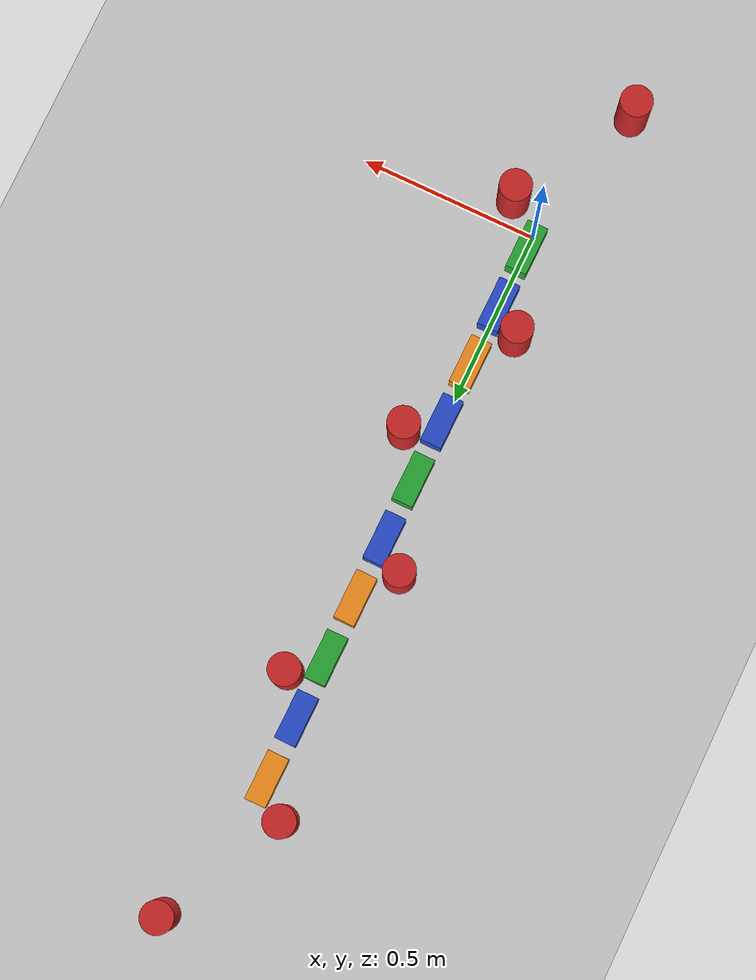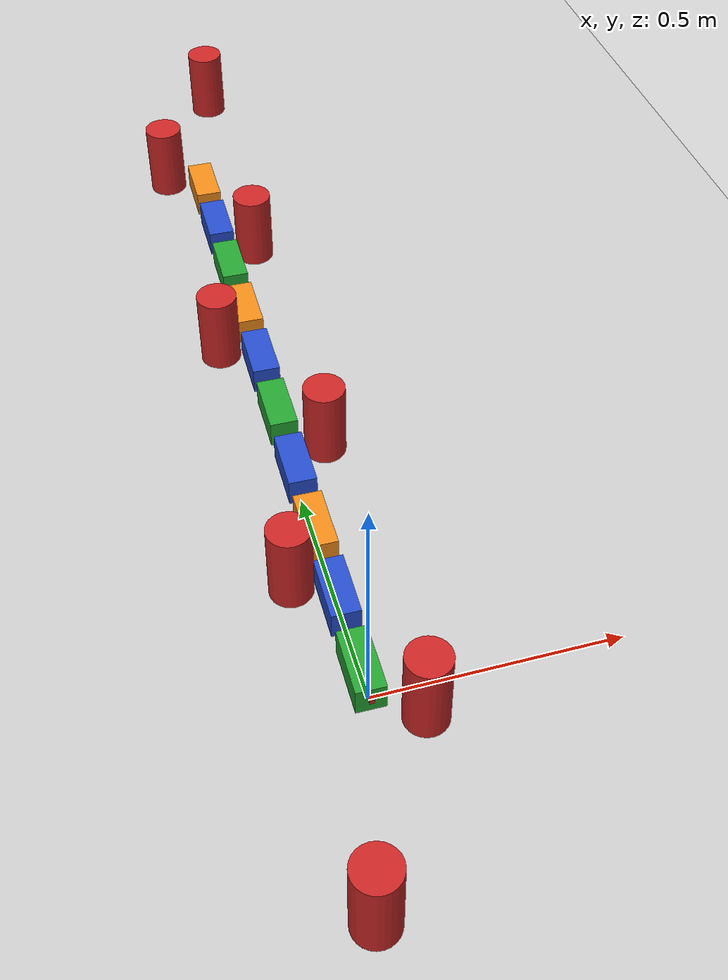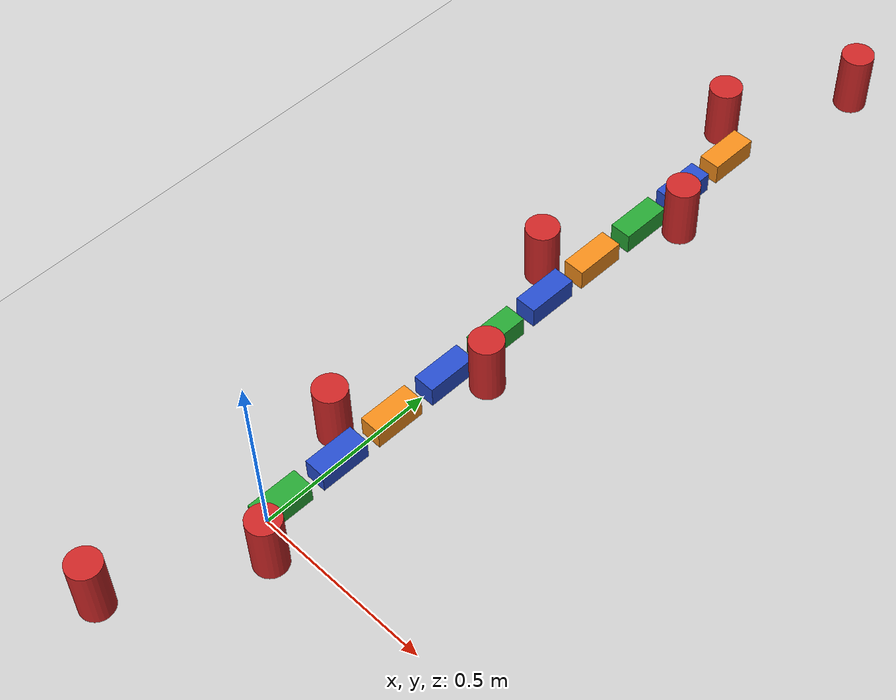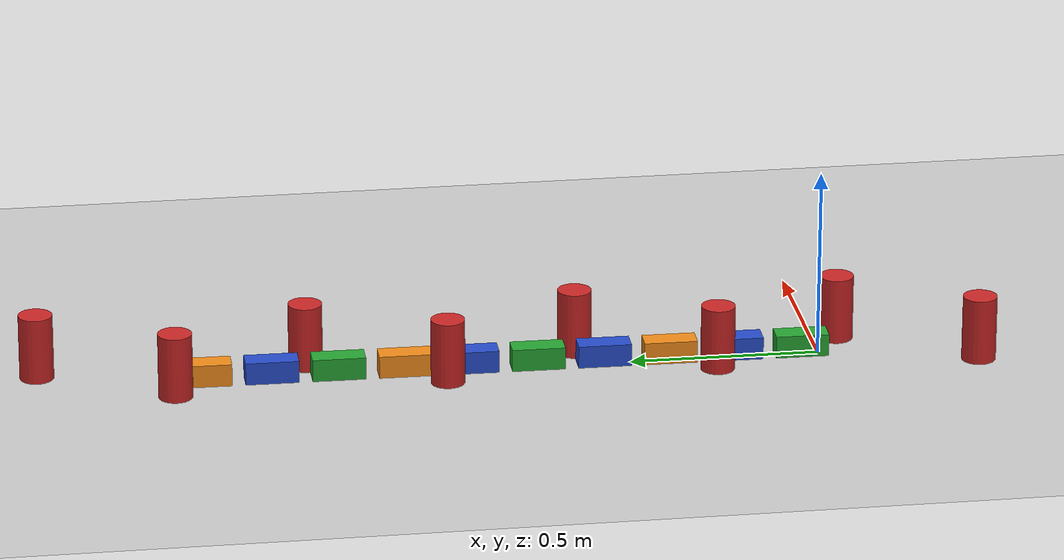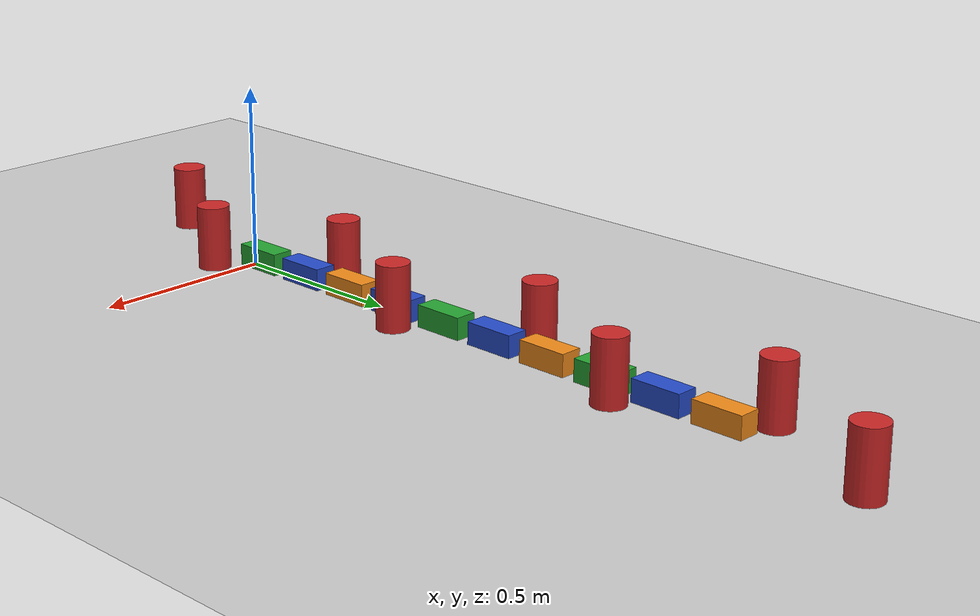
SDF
<sdf version="1.7">
 <world name="default">
  <light name="sun" type="directional">
   <pose>0 0 10 0 -0 0</pose>
   <diffuse>0.8 0.8 0.8 1</diffuse>
   <specular>0.2 0.2 0.2 1</specular>
   <attenuation>
    <range>1000</range>
    <constant>0.9</constant>
    <linear>0.01</linear>
    <quadratic>0.001</quadratic>
   </attenuation>
   <direction>-0.5 0.1 -0.9</direction>
   <spot><inner_angle>0</inner_angle><outer_angle>0</outer_angle><falloff>0</falloff></spot>
  </light>
  <model name="ground_plane">
   <static>1</static>
   <link name="link">
    <collision name="collision">
     <geometry><plane><normal>0 0 1</normal><size>100 100</size></plane></geometry>
     <surface>
      <contact><collide_bitmask>65535</collide_bitmask></contact>
      <friction><ode><mu>100</mu><mu2>50</mu2></ode></friction>
     </surface>
    </collision>
    <visual name="visual">
     <cast_shadows>0</cast_shadows>
     <geometry><plane><normal>0 0 1</normal><size>100 100</size></plane></geometry>
     <material>
      <script><uri>file://media/materials/scripts/gazebo.material</uri><name>Gazebo/Grey</name></script>
     </material>
    </visual>
   </link>
  </model>
  <gravity>0 0 -9.8</gravity>
  <magnetic_field>6e-06 2.3e-05 -4.2e-05</magnetic_field>
  <atmosphere type="adiabatic"/>
  <physics type="ode">
   <max_step_size>0.001</max_step_size>
   <real_time_factor>1</real_time_factor>
   <real_time_update_rate>1000</real_time_update_rate>
  </physics>
  <scene><ambient>0.4 0.4 0.4 1</ambient><background>0.7 0.7 0.7 1</background><shadows>1</shadows></scene>
  <audio><device>default</device></audio>
  <spherical_coordinates>
   <surface_model>EARTH_WGS84</surface_model>
   <latitude_deg>0</latitude_deg>
   <longitude_deg>0</longitude_deg>
   <elevation>0</elevation>
   <heading_deg>0</heading_deg>
  </spherical_coordinates>
  <model name="my_bot">
   <link name="base_link">
    <inertial>
     <pose>0 0.07 0.03 0 -0 0</pose>
     <mass>1</mass>
     <inertia>
      <ixx>0.00193333</ixx>
      <ixy>0</ixy>
      <ixz>0</ixz>
      <iyy>0.0006</iyy>
      <iyz>0</iyz>
      <izz>0.00193333</izz>
     </inertia>
    </inertial>
    <collision name="base_link_fixed_joint_lump__link_1_collision">
     <pose>0 0.07 0.03 0 -0 0</pose>
     <geometry><box><size>0.06 0.14 0.06</size></box></geometry>
    </collision>
    <visual name="base_link_fixed_joint_lump__link_1_visual">
     <pose>0 0.07 0.03 0 -0 0</pose>
     <geometry><box><size>0.06 0.14 0.06</size></box></geometry>
     <material>
      <script><name>Gazebo/Green</name><uri>file://media/materials/scripts/gazebo.material</uri></script>
     </material>
    </visual>
    <visual name="base_link_fixed_joint_lump__camera_link_visual_1">
     <pose>0 0 0.03 0 0 -1.5708</pose>
     <geometry><box><size>0.01 0.01 0.01</size></box></geometry>
     <material>
      <script><name>Gazebo/Red</name><uri>file://media/materials/scripts/gazebo.material</uri></script>
     </material>
    </visual>
    <sensor name="camera" type="camera">
     <visualize>1</visualize>
     <update_rate>10</update_rate>
     <camera>
      <horizontal_fov>1.089</horizontal_fov>
      <image><format>R8G8B8</format><width>640</width><height>480</height></image>
      <clip><near>0.05</near><far>8</far></clip>
     </camera>
     <plugin name="camera_controller" filename="libgazebo_ros_camera.so">
      <frame_name>camera_link_optical</frame_name>
     </plugin>
     <pose>0 0 0.03 0 0 -1.5708</pose>
    </sensor>
   </link>
   <joint name="link_1_2_joint" type="revolute">
    <pose relative_to="base_link">0 0.175 0 0 -0 0</pose>
    <parent>base_link</parent>
    <child>link_2</child>
    <axis>
     <xyz>0 0 1</xyz>
     <limit><lower>-0.785398</lower><upper>0.785398</upper><effort>1000</effort><velocity>50</velocity></limit>
     <dynamics><spring_reference>0</spring_reference><spring_stiffness>0</spring_stiffness></dynamics>
    </axis>
   </joint>
   <link name="link_2">
    <pose relative_to="link_1_2_joint">0 0 0 0 -0 0</pose>
    <inertial>
     <pose>0 0.07 0.03 0 -0 0</pose>
     <mass>1</mass>
     <inertia>
      <ixx>0.00193333</ixx>
      <ixy>0</ixy>
      <ixz>0</ixz>
      <iyy>0.0006</iyy>
      <iyz>0</iyz>
      <izz>0.00193333</izz>
     </inertia>
    </inertial>
    <collision name="link_2_collision">
     <pose>0 0.07 0.03 0 -0 0</pose>
     <geometry><box><size>0.06 0.14 0.06</size></box></geometry>
    </collision>
    <visual name="link_2_visual">
     <pose>0 0.07 0.03 0 -0 0</pose>
     <geometry><box><size>0.06 0.14 0.06</size></box></geometry>
     <material>
      <script><name>Gazebo/Blue</name><uri>file://media/materials/scripts/gazebo.material</uri></script>
     </material>
    </visual>
   </link>
   <joint name="link_2_3_joint" type="revolute">
    <pose relative_to="link_2">0 0.175 0 0 -0 0</pose>
    <parent>link_2</parent>
    <child>link_3</child>
    <axis>
     <xyz>0 0 1</xyz>
     <limit><lower>-0.785398</lower><upper>0.785398</upper><effort>1000</effort><velocity>50</velocity></limit>
     <dynamics><spring_reference>0</spring_reference><spring_stiffness>0</spring_stiffness></dynamics>
    </axis>
   </joint>
   <link name="link_3">
    <pose relative_to="link_2_3_joint">0 0 0 0 -0 0</pose>
    <inertial>
     <pose>0 0.07 0.03 0 -0 0</pose>
     <mass>1</mass>
     <inertia>
      <ixx>0.00193333</ixx>
      <ixy>0</ixy>
      <ixz>0</ixz>
      <iyy>0.0006</iyy>
      <iyz>0</iyz>
      <izz>0.00193333</izz>
     </inertia>
    </inertial>
    <collision name="link_3_collision">
     <pose>0 0.07 0.03 0 -0 0</pose>
     <geometry><box><size>0.06 0.14 0.06</size></box></geometry>
    </collision>
    <visual name="link_3_visual">
     <pose>0 0.07 0.03 0 -0 0</pose>
     <geometry><box><size>0.06 0.14 0.06</size></box></geometry>
     <material>
      <script><name>Gazebo/Orange</name><uri>file://media/materials/scripts/gazebo.material</uri></script>
     </material>
    </visual>
   </link>
   <joint name="link_3_4_joint" type="revolute">
    <pose relative_to="link_3">0 0.175 0 0 -0 0</pose>
    <parent>link_3</parent>
    <child>link_4</child>
    <axis>
     <xyz>0 0 1</xyz>
     <limit><lower>-0.785398</lower><upper>0.785398</upper><effort>1000</effort><velocity>50</velocity></limit>
     <dynamics><spring_reference>0</spring_reference><spring_stiffness>0</spring_stiffness></dynamics>
    </axis>
   </joint>
   <link name="link_4">
    <pose relative_to="link_3_4_joint">0 0 0 0 -0 0</pose>
    <inertial>
     <pose>0 0.07 0.03 0 -0 0</pose>
     <mass>1</mass>
     <inertia>
      <ixx>0.00193333</ixx>
      <ixy>0</ixy>
      <ixz>0</ixz>
      <iyy>0.0006</iyy>
      <iyz>0</iyz>
      <izz>0.00193333</izz>
     </inertia>
    </inertial>
    <collision name="link_4_collision">
     <pose>0 0.07 0.03 0 -0 0</pose>
     <geometry><box><size>0.06 0.14 0.06</size></box></geometry>
    </collision>
    <visual name="link_4_visual">
     <pose>0 0.07 0.03 0 -0 0</pose>
     <geometry><box><size>0.06 0.14 0.06</size></box></geometry>
     <material>
      <script><name>Gazebo/Blue</name><uri>file://media/materials/scripts/gazebo.material</uri></script>
     </material>
    </visual>
   </link>
   <joint name="link_4_5_joint" type="revolute">
    <pose relative_to="link_4">0 0.175 0 0 -0 0</pose>
    <parent>link_4</parent>
    <child>link_5</child>
    <axis>
     <xyz>0 0 1</xyz>
     <limit><lower>-0.785398</lower><upper>0.785398</upper><effort>1000</effort><velocity>50</velocity></limit>
     <dynamics><spring_reference>0</spring_reference><spring_stiffness>0</spring_stiffness></dynamics>
    </axis>
   </joint>
   <link name="link_5">
    <pose relative_to="link_4_5_joint">0 0 0 0 -0 0</pose>
    <inertial>
     <pose>0 0.07 0.03 0 -0 0</pose>
     <mass>1</mass>
     <inertia>
      <ixx>0.00193333</ixx>
      <ixy>0</ixy>
      <ixz>0</ixz>
      <iyy>0.0006</iyy>
      <iyz>0</iyz>
      <izz>0.00193333</izz>
     </inertia>
    </inertial>
    <collision name="link_5_collision">
     <pose>0 0.07 0.03 0 -0 0</pose>
     <geometry><box><size>0.06 0.14 0.06</size></box></geometry>
    </collision>
    <visual name="link_5_visual">
     <pose>0 0.07 0.03 0 -0 0</pose>
     <geometry><box><size>0.06 0.14 0.06</size></box></geometry>
     <material>
      <script><name>Gazebo/Green</name><uri>file://media/materials/scripts/gazebo.material</uri></script>
     </material>
    </visual>
   </link>
   <joint name="link_5_6_joint" type="revolute">
    <pose relative_to="link_5">0 0.175 0 0 -0 0</pose>
    <parent>link_5</parent>
    <child>link_6</child>
    <axis>
     <xyz>0 0 1</xyz>
     <limit><lower>-0.785398</lower><upper>0.785398</upper><effort>1000</effort><velocity>50</velocity></limit>
     <dynamics><spring_reference>0</spring_reference><spring_stiffness>0</spring_stiffness></dynamics>
    </axis>
   </joint>
   <link name="link_6">
    <pose relative_to="link_5_6_joint">0 0 0 0 -0 0</pose>
    <inertial>
     <pose>0 0.07 0.03 0 -0 0</pose>
     <mass>1</mass>
     <inertia>
      <ixx>0.00193333</ixx>
      <ixy>0</ixy>
      <ixz>0</ixz>
      <iyy>0.0006</iyy>
      <iyz>0</iyz>
      <izz>0.00193333</izz>
     </inertia>
    </inertial>
    <collision name="link_6_collision">
     <pose>0 0.07 0.03 0 -0 0</pose>
     <geometry><box><size>0.06 0.14 0.06</size></box></geometry>
    </collision>
    <visual name="link_6_visual">
     <pose>0 0.07 0.03 0 -0 0</pose>
     <geometry><box><size>0.06 0.14 0.06</size></box></geometry>
     <material>
      <script><name>Gazebo/Blue</name><uri>file://media/materials/scripts/gazebo.material</uri></script>
     </material>
    </visual>
   </link>
   <joint name="link_6_7_joint" type="revolute">
    <pose relative_to="link_6">0 0.175 0 0 -0 0</pose>
    <parent>link_6</parent>
    <child>link_7</child>
    <axis>
     <xyz>0 0 1</xyz>
     <limit><lower>-0.785398</lower><upper>0.785398</upper><effort>1000</effort><velocity>50</velocity></limit>
     <dynamics><spring_reference>0</spring_reference><spring_stiffness>0</spring_stiffness></dynamics>
    </axis>
   </joint>
   <link name="link_7">
    <pose relative_to="link_6_7_joint">0 0 0 0 -0 0</pose>
    <inertial>
     <pose>0 0.07 0.03 0 -0 0</pose>
     <mass>1</mass>
     <inertia>
      <ixx>0.00193333</ixx>
      <ixy>0</ixy>
      <ixz>0</ixz>
      <iyy>0.0006</iyy>
      <iyz>0</iyz>
      <izz>0.00193333</izz>
     </inertia>
    </inertial>
    <collision name="link_7_collision">
     <pose>0 0.07 0.03 0 -0 0</pose>
     <geometry><box><size>0.06 0.14 0.06</size></box></geometry>
    </collision>
    <visual name="link_7_visual">
     <pose>0 0.07 0.03 0 -0 0</pose>
     <geometry><box><size>0.06 0.14 0.06</size></box></geometry>
     <material>
      <script><name>Gazebo/Orange</name><uri>file://media/materials/scripts/gazebo.material</uri></script>
     </material>
    </visual>
   </link>
   <joint name="link_7_8_joint" type="revolute">
    <pose relative_to="link_7">0 0.175 0 0 -0 0</pose>
    <parent>link_7</parent>
    <child>link_8</child>
    <axis>
     <xyz>0 0 1</xyz>
     <limit><lower>-0.785398</lower><upper>0.785398</upper><effort>1000</effort><velocity>50</velocity></limit>
     <dynamics><spring_reference>0</spring_reference><spring_stiffness>0</spring_stiffness></dynamics>
    </axis>
   </joint>
   <link name="link_8">
    <pose relative_to="link_7_8_joint">0 0 0 0 -0 0</pose>
    <inertial>
     <pose>0 0.07 0.03 0 -0 0</pose>
     <mass>1</mass>
     <inertia>
      <ixx>0.00193333</ixx>
      <ixy>0</ixy>
      <ixz>0</ixz>
      <iyy>0.0006</iyy>
      <iyz>0</iyz>
      <izz>0.00193333</izz>
     </inertia>
    </inertial>
    <collision name="link_8_collision">
     <pose>0 0.07 0.03 0 -0 0</pose>
     <geometry><box><size>0.06 0.14 0.06</size></box></geometry>
    </collision>
    <visual name="link_8_visual">
     <pose>0 0.07 0.03 0 -0 0</pose>
     <geometry><box><size>0.06 0.14 0.06</size></box></geometry>
     <material>
      <script><name>Gazebo/Green</name><uri>file://media/materials/scripts/gazebo.material</uri></script>
     </material>
    </visual>
   </link>
   <joint name="link_8_9_joint" type="revolute">
    <pose relative_to="link_8">0 0.175 0 0 -0 0</pose>
    <parent>link_8</parent>
    <child>link_9</child>
    <axis>
     <xyz>0 0 1</xyz>
     <limit><lower>-0.785398</lower><upper>0.785398</upper><effort>1000</effort><velocity>50</velocity></limit>
     <dynamics><spring_reference>0</spring_reference><spring_stiffness>0</spring_stiffness></dynamics>
    </axis>
   </joint>
   <link name="link_9">
    <pose relative_to="link_8_9_joint">0 0 0 0 -0 0</pose>
    <inertial>
     <pose>0 0.07 0.03 0 -0 0</pose>
     <mass>1</mass>
     <inertia>
      <ixx>0.00193333</ixx>
      <ixy>0</ixy>
      <ixz>0</ixz>
      <iyy>0.0006</iyy>
      <iyz>0</iyz>
      <izz>0.00193333</izz>
     </inertia>
    </inertial>
    <collision name="link_9_collision">
     <pose>0 0.07 0.03 0 -0 0</pose>
     <geometry><box><size>0.06 0.14 0.06</size></box></geometry>
    </collision>
    <visual name="link_9_visual">
     <pose>0 0.07 0.03 0 -0 0</pose>
     <geometry><box><size>0.06 0.14 0.06</size></box></geometry>
     <material>
      <script><name>Gazebo/Blue</name><uri>file://media/materials/scripts/gazebo.material</uri></script>
     </material>
    </visual>
   </link>
   <joint name="link_9_10_joint" type="revolute">
    <pose relative_to="link_9">0 0.175 0 0 -0 0</pose>
    <parent>link_9</parent>
    <child>link_10</child>
    <axis>
     <xyz>0 0 1</xyz>
     <limit><lower>-0.785398</lower><upper>0.785398</upper><effort>1000</effort><velocity>50</velocity></limit>
     <dynamics><spring_reference>0</spring_reference><spring_stiffness>0</spring_stiffness></dynamics>
    </axis>
   </joint>
   <link name="link_10">
    <pose relative_to="link_9_10_joint">0 0 0 0 -0 0</pose>
    <inertial>
     <pose>0 0.07 0.03 0 -0 0</pose>
     <mass>1</mass>
     <inertia>
      <ixx>0.00193333</ixx>
      <ixy>0</ixy>
      <ixz>0</ixz>
      <iyy>0.0006</iyy>
      <iyz>0</iyz>
      <izz>0.00193333</izz>
     </inertia>
    </inertial>
    <collision name="link_10_collision">
     <pose>0 0.07 0.03 0 -0 0</pose>
     <geometry><box><size>0.06 0.14 0.06</size></box></geometry>
    </collision>
    <visual name="link_10_visual">
     <pose>0 0.07 0.03 0 -0 0</pose>
     <geometry><box><size>0.06 0.14 0.06</size></box></geometry>
     <material>
      <script><name>Gazebo/Orange</name><uri>file://media/materials/scripts/gazebo.material</uri></script>
     </material>
    </visual>
   </link>
   <static>0</static>
   <plugin name="gazebo_ros_planar_move" filename="libgazebo_ros_planar_move.so">
    <update_rate>100</update_rate>
    <publish_rate>10</publish_rate>
    <publish_odom>1</publish_odom>
    <publish_odom_tf>1</publish_odom_tf>
    <odometry_frame>odom</odometry_frame>
    <robot_base_frame>base_link</robot_base_frame>
   </plugin>
   <plugin name="gazebo_ros2_control" filename="libgazebo_ros2_control.so">
    <parameters>/home/mohit/GITHUBRepos/snake-robot-sim/install/snake_bot/share/snake_bot/config/controllers.yaml</parameters>
   </plugin>
   <plugin name="ft_sensor" filename="libgazebo_ros_ft_sensor.so">
    <updateRate>100.0</updateRate>
    <remapping>wrench:=joint_1</remapping>
    <joint_name>link_1_2_joint</joint_name>
    <gaussian_noise>0.01</gaussian_noise>
    <update_rate>1</update_rate>
   </plugin>
   <pose>-0.000781 -0.024236 1e-06 -3e-06 -9e-06 -0.011136</pose>
  </model>
  <model name="model">
   <link name="link_0">
    <inertial>
     <mass>1e+10</mass>
     <inertia>
      <ixx>3.11188e+07</ixx>
      <ixy>0</ixy>
      <ixz>0</ixz>
      <iyy>3.11188e+07</iyy>
      <iyz>0</iyz>
      <izz>1.00639e+07</izz>
     </inertia>
    </inertial>
    <pose>0.081479 -0.882122 0 0 -0 0</pose>
    <visual name="visual">
     <geometry><cylinder><radius>0.0448636</radius><length>0.17693</length></cylinder></geometry>
     <material>
      <lighting>1</lighting>
      <script><uri>file://media/materials/scripts/gazebo.material</uri><name>Gazebo/Red</name></script>
      <shader type="pixel"><normal_map>__default__</normal_map></shader>
      <ambient>1 0 0 1</ambient>
      <diffuse>1 0 0 1</diffuse>
      <specular>0.1 0.1 0.1 1</specular>
      <emissive>0 0 0 1</emissive>
     </material>
    </visual>
    <collision name="collision">
     <geometry><cylinder><radius>0.044864</radius><length>0.17693</length></cylinder></geometry>
     <surface>
      <friction>
       <ode><mu>1</mu><mu2>1</mu2><fdir1>0 0 0</fdir1><slip1>0</slip1><slip2>0</slip2></ode>
       <torsional>
        <coefficient>1</coefficient>
        <patch_radius>0</patch_radius>
        <surface_radius>0</surface_radius>
        <use_patch_radius>1</use_patch_radius>
        <ode><slip>0</slip></ode>
       </torsional>
      </friction>
      <bounce><restitution_coefficient>0</restitution_coefficient><threshold>1e+06</threshold></bounce>
      <contact>
       <collide_without_contact>0</collide_without_contact>
       <collide_without_contact_bitmask>1</collide_without_contact_bitmask>
       <collide_bitmask>1</collide_bitmask>
       <ode>
        <soft_cfm>0</soft_cfm>
        <soft_erp>0.2</soft_erp>
        <kp>1e+13</kp>
        <kd>1</kd>
        <max_vel>0.01</max_vel>
        <min_depth>0</min_depth>
       </ode>
       <bullet>
        <split_impulse>1</split_impulse>
        <split_impulse_penetration_threshold>-0.01</split_impulse_penetration_threshold>
        <soft_cfm>0</soft_cfm>
        <soft_erp>0.2</soft_erp>
        <kp>1e+13</kp>
        <kd>1</kd>
       </bullet>
      </contact>
     </surface>
    </collision>
   </link>
   <link name="link_0_clone">
    <inertial>
     <mass>1e+10</mass>
     <inertia>
      <ixx>3.11188e+07</ixx>
      <ixy>0</ixy>
      <ixz>0</ixz>
      <iyy>3.11188e+07</iyy>
      <iyz>0</iyz>
      <izz>1.00639e+07</izz>
     </inertia>
    </inertial>
    <pose>-0.08293 -0.536122 0 0 -0 0</pose>
    <visual name="visual">
     <geometry><cylinder><radius>0.0448636</radius><length>0.17693</length></cylinder></geometry>
     <material>
      <lighting>1</lighting>
      <script><uri>file://media/materials/scripts/gazebo.material</uri><name>Gazebo/Red</name></script>
      <shader type="pixel"><normal_map>__default__</normal_map></shader>
      <ambient>1 0 0 1</ambient>
      <diffuse>1 0 0 1</diffuse>
      <specular>0.1 0.1 0.1 1</specular>
      <emissive>0 0 0 1</emissive>
     </material>
    </visual>
    <collision name="collision">
     <geometry><cylinder><radius>0.044864</radius><length>0.17693</length></cylinder></geometry>
     <surface>
      <friction>
       <ode><mu>1</mu><mu2>1</mu2><fdir1>0 0 0</fdir1><slip1>0</slip1><slip2>0</slip2></ode>
       <torsional>
        <coefficient>1</coefficient>
        <patch_radius>0</patch_radius>
        <surface_radius>0</surface_radius>
        <use_patch_radius>1</use_patch_radius>
        <ode><slip>0</slip></ode>
       </torsional>
      </friction>
      <bounce><restitution_coefficient>0</restitution_coefficient><threshold>1e+06</threshold></bounce>
      <contact>
       <collide_without_contact>0</collide_without_contact>
       <collide_without_contact_bitmask>1</collide_without_contact_bitmask>
       <collide_bitmask>1</collide_bitmask>
       <ode>
        <soft_cfm>0</soft_cfm>
        <soft_erp>0.2</soft_erp>
        <kp>1e+13</kp>
        <kd>1</kd>
        <max_vel>0.01</max_vel>
        <min_depth>0</min_depth>
       </ode>
       <bullet>
        <split_impulse>1</split_impulse>
        <split_impulse_penetration_threshold>-0.01</split_impulse_penetration_threshold>
        <soft_cfm>0</soft_cfm>
        <soft_erp>0.2</soft_erp>
        <kp>1e+13</kp>
        <kd>1</kd>
       </bullet>
      </contact>
     </surface>
    </collision>
   </link>
   <link name="link_0_clone_0">
    <inertial>
     <mass>1e+10</mass>
     <inertia>
      <ixx>3.11188e+07</ixx>
      <ixy>0</ixy>
      <ixz>0</ixz>
      <iyy>3.11188e+07</iyy>
      <iyz>0</iyz>
      <izz>1.00639e+07</izz>
     </inertia>
    </inertial>
    <pose>0.078553 -0.180553 0 0 -0 0</pose>
    <visual name="visual">
     <geometry><cylinder><radius>0.0448636</radius><length>0.17693</length></cylinder></geometry>
     <material>
      <lighting>1</lighting>
      <script><uri>file://media/materials/scripts/gazebo.material</uri><name>Gazebo/Red</name></script>
      <shader type="pixel"><normal_map>__default__</normal_map></shader>
      <ambient>1 0 0 1</ambient>
      <diffuse>1 0 0 1</diffuse>
      <specular>0.1 0.1 0.1 1</specular>
      <emissive>0 0 0 1</emissive>
     </material>
    </visual>
    <collision name="collision">
     <geometry><cylinder><radius>0.044864</radius><length>0.17693</length></cylinder></geometry>
     <surface>
      <friction>
       <ode><mu>1</mu><mu2>1</mu2><fdir1>0 0 0</fdir1><slip1>0</slip1><slip2>0</slip2></ode>
       <torsional>
        <coefficient>1</coefficient>
        <patch_radius>0</patch_radius>
        <surface_radius>0</surface_radius>
        <use_patch_radius>1</use_patch_radius>
        <ode><slip>0</slip></ode>
       </torsional>
      </friction>
      <bounce><restitution_coefficient>0</restitution_coefficient><threshold>1e+06</threshold></bounce>
      <contact>
       <collide_without_contact>0</collide_without_contact>
       <collide_without_contact_bitmask>1</collide_without_contact_bitmask>
       <collide_bitmask>1</collide_bitmask>
       <ode>
        <soft_cfm>0</soft_cfm>
        <soft_erp>0.2</soft_erp>
        <kp>1e+13</kp>
        <kd>1</kd>
        <max_vel>0.01</max_vel>
        <min_depth>0</min_depth>
       </ode>
       <bullet>
        <split_impulse>1</split_impulse>
        <split_impulse_penetration_threshold>-0.01</split_impulse_penetration_threshold>
        <soft_cfm>0</soft_cfm>
        <soft_erp>0.2</soft_erp>
        <kp>1e+13</kp>
        <kd>1</kd>
       </bullet>
      </contact>
     </surface>
    </collision>
   </link>
   <link name="link_0_clone_1">
    <inertial>
     <mass>1e+10</mass>
     <inertia>
      <ixx>3.11188e+07</ixx>
      <ixy>0</ixy>
      <ixz>0</ixz>
      <iyy>3.11188e+07</iyy>
      <iyz>0</iyz>
      <izz>1.00639e+07</izz>
     </inertia>
    </inertial>
    <pose>-0.076096 0.175363 0 0 -0 0</pose>
    <visual name="visual">
     <geometry><cylinder><radius>0.0448636</radius><length>0.17693</length></cylinder></geometry>
     <material>
      <lighting>1</lighting>
      <script><uri>file://media/materials/scripts/gazebo.material</uri><name>Gazebo/Red</name></script>
      <shader type="pixel"><normal_map>__default__</normal_map></shader>
      <ambient>1 0 0 1</ambient>
      <diffuse>1 0 0 1</diffuse>
      <specular>0.1 0.1 0.1 1</specular>
      <emissive>0 0 0 1</emissive>
     </material>
    </visual>
    <collision name="collision">
     <geometry><cylinder><radius>0.044864</radius><length>0.17693</length></cylinder></geometry>
     <surface>
      <friction>
       <ode><mu>1</mu><mu2>1</mu2><fdir1>0 0 0</fdir1><slip1>0</slip1><slip2>0</slip2></ode>
       <torsional>
        <coefficient>1</coefficient>
        <patch_radius>0</patch_radius>
        <surface_radius>0</surface_radius>
        <use_patch_radius>1</use_patch_radius>
        <ode><slip>0</slip></ode>
       </torsional>
      </friction>
      <bounce><restitution_coefficient>0</restitution_coefficient><threshold>1e+06</threshold></bounce>
      <contact>
       <collide_without_contact>0</collide_without_contact>
       <collide_without_contact_bitmask>1</collide_without_contact_bitmask>
       <collide_bitmask>1</collide_bitmask>
       <ode>
        <soft_cfm>0</soft_cfm>
        <soft_erp>0.2</soft_erp>
        <kp>1e+13</kp>
        <kd>1</kd>
        <max_vel>0.01</max_vel>
        <min_depth>0</min_depth>
       </ode>
       <bullet>
        <split_impulse>1</split_impulse>
        <split_impulse_penetration_threshold>-0.01</split_impulse_penetration_threshold>
        <soft_cfm>0</soft_cfm>
        <soft_erp>0.2</soft_erp>
        <kp>1e+13</kp>
        <kd>1</kd>
       </bullet>
      </contact>
     </surface>
    </collision>
   </link>
   <link name="link_0_clone_1_clone">
    <inertial>
     <mass>1e+10</mass>
     <inertia>
      <ixx>3.11188e+07</ixx>
      <ixy>0</ixy>
      <ixz>0</ixz>
      <iyy>3.11188e+07</iyy>
      <iyz>0</iyz>
      <izz>1.00639e+07</izz>
     </inertia>
    </inertial>
    <pose>0.08216 0.531048 0 0 -0 0</pose>
    <visual name="visual">
     <geometry><cylinder><radius>0.0448636</radius><length>0.17693</length></cylinder></geometry>
     <material>
      <lighting>1</lighting>
      <script><uri>file://media/materials/scripts/gazebo.material</uri><name>Gazebo/Red</name></script>
      <shader type="pixel"><normal_map>__default__</normal_map></shader>
      <ambient>1 0 0 1</ambient>
      <diffuse>1 0 0 1</diffuse>
      <specular>0.1 0.1 0.1 1</specular>
      <emissive>0 0 0 1</emissive>
     </material>
    </visual>
    <collision name="collision">
     <geometry><cylinder><radius>0.044864</radius><length>0.17693</length></cylinder></geometry>
     <surface>
      <friction>
       <ode><mu>1</mu><mu2>1</mu2><fdir1>0 0 0</fdir1><slip1>0</slip1><slip2>0</slip2></ode>
       <torsional>
        <coefficient>1</coefficient>
        <patch_radius>0</patch_radius>
        <surface_radius>0</surface_radius>
        <use_patch_radius>1</use_patch_radius>
        <ode><slip>0</slip></ode>
       </torsional>
      </friction>
      <bounce><restitution_coefficient>0</restitution_coefficient><threshold>1e+06</threshold></bounce>
      <contact>
       <collide_without_contact>0</collide_without_contact>
       <collide_without_contact_bitmask>1</collide_without_contact_bitmask>
       <collide_bitmask>1</collide_bitmask>
       <ode>
        <soft_cfm>0</soft_cfm>
        <soft_erp>0.2</soft_erp>
        <kp>1e+13</kp>
        <kd>1</kd>
        <max_vel>0.01</max_vel>
        <min_depth>0</min_depth>
       </ode>
       <bullet>
        <split_impulse>1</split_impulse>
        <split_impulse_penetration_threshold>-0.01</split_impulse_penetration_threshold>
        <soft_cfm>0</soft_cfm>
        <soft_erp>0.2</soft_erp>
        <kp>1e+13</kp>
        <kd>1</kd>
       </bullet>
      </contact>
     </surface>
    </collision>
   </link>
   <link name="link_0_clone_1_clone_0">
    <inertial>
     <mass>1e+10</mass>
     <inertia>
      <ixx>3.11188e+07</ixx>
      <ixy>0</ixy>
      <ixz>0</ixz>
      <iyy>3.11188e+07</iyy>
      <iyz>0</iyz>
      <izz>1.00639e+07</izz>
     </inertia>
    </inertial>
    <pose>-0.073268 0.8857 0 0 -0 0</pose>
    <visual name="visual">
     <geometry><cylinder><radius>0.0448636</radius><length>0.17693</length></cylinder></geometry>
     <material>
      <lighting>1</lighting>
      <script><uri>file://media/materials/scripts/gazebo.material</uri><name>Gazebo/Red</name></script>
      <shader type="pixel"><normal_map>__default__</normal_map></shader>
      <ambient>1 0 0 1</ambient>
      <diffuse>1 0 0 1</diffuse>
      <specular>0.1 0.1 0.1 1</specular>
      <emissive>0 0 0 1</emissive>
     </material>
    </visual>
    <collision name="collision">
     <geometry><cylinder><radius>0.044864</radius><length>0.17693</length></cylinder></geometry>
     <surface>
      <friction>
       <ode><mu>1</mu><mu2>1</mu2><fdir1>0 0 0</fdir1><slip1>0</slip1><slip2>0</slip2></ode>
       <torsional>
        <coefficient>1</coefficient>
        <patch_radius>0</patch_radius>
        <surface_radius>0</surface_radius>
        <use_patch_radius>1</use_patch_radius>
        <ode><slip>0</slip></ode>
       </torsional>
      </friction>
      <bounce><restitution_coefficient>0</restitution_coefficient><threshold>1e+06</threshold></bounce>
      <contact>
       <collide_without_contact>0</collide_without_contact>
       <collide_without_contact_bitmask>1</collide_without_contact_bitmask>
       <collide_bitmask>1</collide_bitmask>
       <ode>
        <soft_cfm>0</soft_cfm>
        <soft_erp>0.2</soft_erp>
        <kp>1e+13</kp>
        <kd>1</kd>
        <max_vel>0.01</max_vel>
        <min_depth>0</min_depth>
       </ode>
       <bullet>
        <split_impulse>1</split_impulse>
        <split_impulse_penetration_threshold>-0.01</split_impulse_penetration_threshold>
        <soft_cfm>0</soft_cfm>
        <soft_erp>0.2</soft_erp>
        <kp>1e+13</kp>
        <kd>1</kd>
       </bullet>
      </contact>
     </surface>
    </collision>
   </link>
   <link name="link_0_clone_1_clone_1">
    <inertial>
     <mass>1e+10</mass>
     <inertia>
      <ixx>3.11188e+07</ixx>
      <ixy>0</ixy>
      <ixz>0</ixz>
      <iyy>3.11188e+07</iyy>
      <iyz>0</iyz>
      <izz>1.00639e+07</izz>
     </inertia>
    </inertial>
    <pose>0.102666 1.23379 0 0 -0 0</pose>
    <visual name="visual">
     <geometry><cylinder><radius>0.0448636</radius><length>0.17693</length></cylinder></geometry>
     <material>
      <lighting>1</lighting>
      <script><uri>file://media/materials/scripts/gazebo.material</uri><name>Gazebo/Red</name></script>
      <shader type="pixel"><normal_map>__default__</normal_map></shader>
      <ambient>1 0 0 1</ambient>
      <diffuse>1 0 0 1</diffuse>
      <specular>0.1 0.1 0.1 1</specular>
      <emissive>0 0 0 1</emissive>
     </material>
    </visual>
    <collision name="collision">
     <geometry><cylinder><radius>0.044864</radius><length>0.17693</length></cylinder></geometry>
     <surface>
      <friction>
       <ode><mu>1</mu><mu2>1</mu2><fdir1>0 0 0</fdir1><slip1>0</slip1><slip2>0</slip2></ode>
       <torsional>
        <coefficient>1</coefficient>
        <patch_radius>0</patch_radius>
        <surface_radius>0</surface_radius>
        <use_patch_radius>1</use_patch_radius>
        <ode><slip>0</slip></ode>
       </torsional>
      </friction>
      <bounce><restitution_coefficient>0</restitution_coefficient><threshold>1e+06</threshold></bounce>
      <contact>
       <collide_without_contact>0</collide_without_contact>
       <collide_without_contact_bitmask>1</collide_without_contact_bitmask>
       <collide_bitmask>1</collide_bitmask>
       <ode>
        <soft_cfm>0</soft_cfm>
        <soft_erp>0.2</soft_erp>
        <kp>1e+13</kp>
        <kd>1</kd>
        <max_vel>0.01</max_vel>
        <min_depth>0</min_depth>
       </ode>
       <bullet>
        <split_impulse>1</split_impulse>
        <split_impulse_penetration_threshold>-0.01</split_impulse_penetration_threshold>
        <soft_cfm>0</soft_cfm>
        <soft_erp>0.2</soft_erp>
        <kp>1e+13</kp>
        <kd>1</kd>
       </bullet>
      </contact>
     </surface>
    </collision>
   </link>
   <link name="link_0_clone_2">
    <inertial>
     <mass>1e+10</mass>
     <inertia>
      <ixx>3.11188e+07</ixx>
      <ixy>0</ixy>
      <ixz>0</ixz>
      <iyy>3.11188e+07</iyy>
      <iyz>0</iyz>
      <izz>1.00639e+07</izz>
     </inertia>
    </inertial>
    <pose>-0.112564 -1.2271 0 0 -0 0</pose>
    <visual name="visual">
     <geometry><cylinder><radius>0.0448636</radius><length>0.17693</length></cylinder></geometry>
     <material>
      <lighting>1</lighting>
      <script><uri>file://media/materials/scripts/gazebo.material</uri><name>Gazebo/Red</name></script>
      <shader type="pixel"><normal_map>__default__</normal_map></shader>
      <ambient>1 0 0 1</ambient>
      <diffuse>1 0 0 1</diffuse>
      <specular>0.1 0.1 0.1 1</specular>
      <emissive>0 0 0 1</emissive>
     </material>
    </visual>
    <collision name="collision">
     <geometry><cylinder><radius>0.044864</radius><length>0.17693</length></cylinder></geometry>
     <surface>
      <friction>
       <ode><mu>1</mu><mu2>1</mu2><fdir1>0 0 0</fdir1><slip1>0</slip1><slip2>0</slip2></ode>
       <torsional>
        <coefficient>1</coefficient>
        <patch_radius>0</patch_radius>
        <surface_radius>0</surface_radius>
        <use_patch_radius>1</use_patch_radius>
        <ode><slip>0</slip></ode>
       </torsional>
      </friction>
      <bounce><restitution_coefficient>0</restitution_coefficient><threshold>1e+06</threshold></bounce>
      <contact>
       <collide_without_contact>0</collide_without_contact>
       <collide_without_contact_bitmask>1</collide_without_contact_bitmask>
       <collide_bitmask>1</collide_bitmask>
       <ode>
        <soft_cfm>0</soft_cfm>
        <soft_erp>0.2</soft_erp>
        <kp>1e+13</kp>
        <kd>1</kd>
        <max_vel>0.01</max_vel>
        <min_depth>0</min_depth>
       </ode>
       <bullet>
        <split_impulse>1</split_impulse>
        <split_impulse_penetration_threshold>-0.01</split_impulse_penetration_threshold>
        <soft_cfm>0</soft_cfm>
        <soft_erp>0.2</soft_erp>
        <kp>1e+13</kp>
        <kd>1</kd>
       </bullet>
      </contact>
     </surface>
    </collision>
   </link>
   <static>1</static>
   <pose>0.008468 0.817097 0.088981 0 -0 0</pose>
  </model>
 </world>
</sdf>
